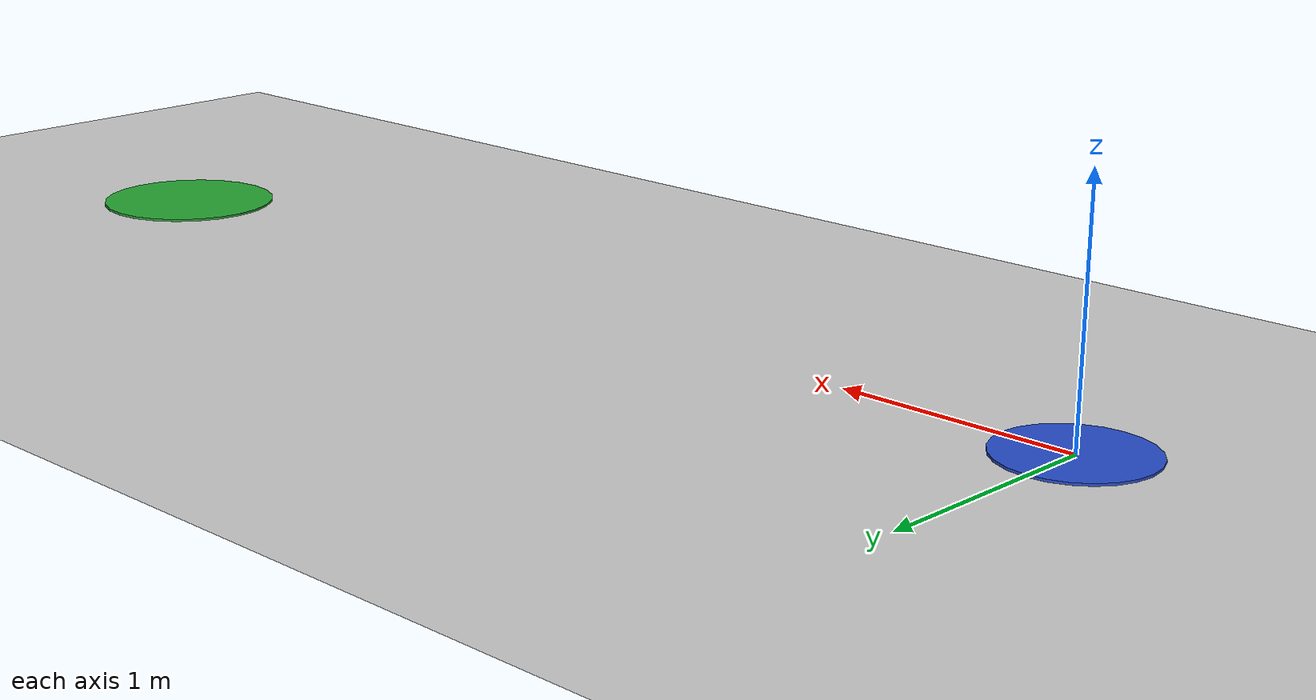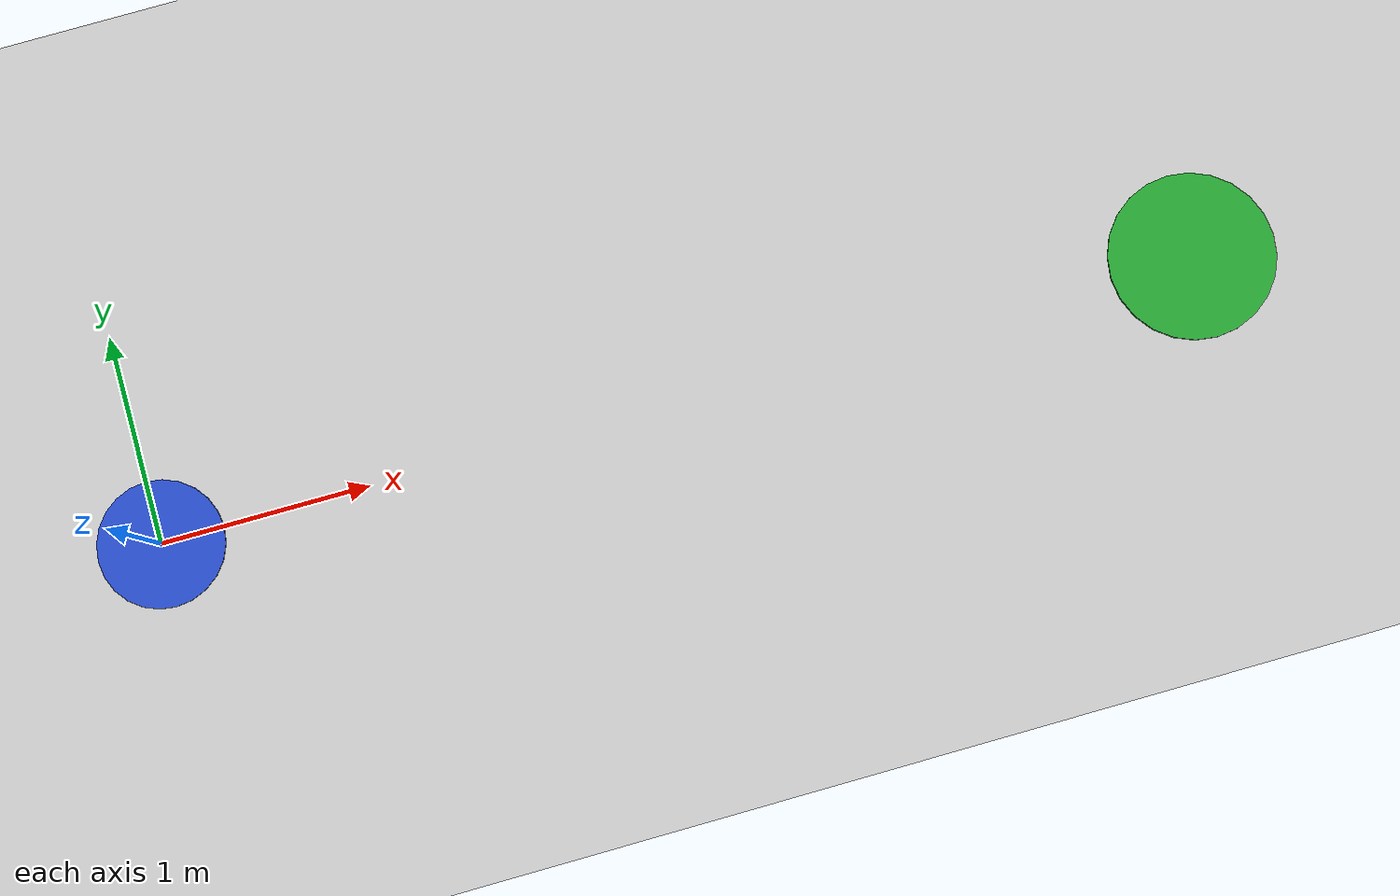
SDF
<?xml version="1.0" ?>
<!-- 由 omni_world.py 自动生成: scene=flat seed=1 -->
<sdf version="1.5">
  <world name="flat">
    <physics type="ode">
      <type>world</type>
      <max_step_size>0.001</max_step_size>
      <real_time_update_rate>1000</real_time_update_rate>
      <iters>500</iters>
    </physics>
    <include><uri>model://sun</uri></include>
    <include><uri>model://ground_plane</uri></include>
    <model name="start">
      <static>true</static>
      <pose>0.000 0.000 0.005 0 0 0</pose>
      <link name="link">
        <visual name="visual">
          <geometry><cylinder><radius>0.300</radius><length>0.01</length></cylinder></geometry>
          <material><script><uri>file://media/materials/scripts/gazebo.material</uri>
            <name>Gazebo/Blue</name></script></material>
        </visual>
      </link>
    </model>
    <model name="goal">
      <static>true</static>
      <pose>5.000 0.000 0.005 0 0 0</pose>
      <link name="link">
        <visual name="visual">
          <geometry><cylinder><radius>0.400</radius><length>0.01</length></cylinder></geometry>
          <material><script><uri>file://media/materials/scripts/gazebo.material</uri>
            <name>Gazebo/Green</name></script></material>
        </visual>
      </link>
    </model>

  </world>
</sdf>
